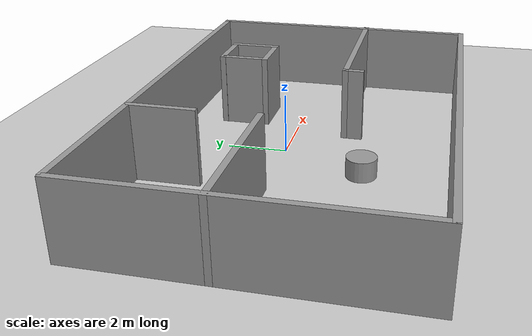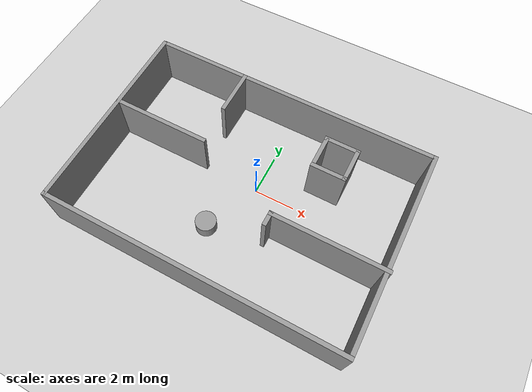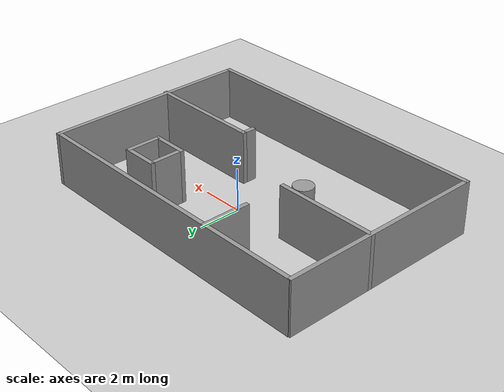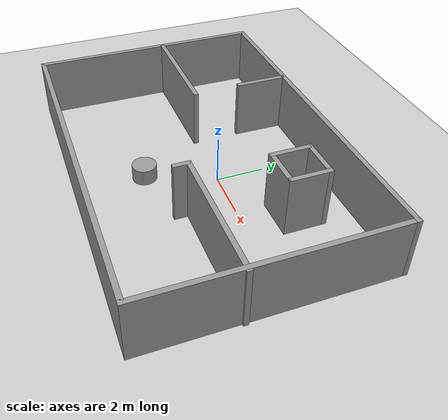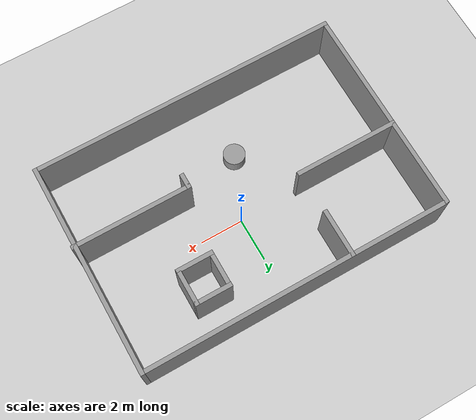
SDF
<sdf version="1.4">
 <world name="default">
  <light name="sun" type="directional">
   <pose>0 0 10 0 -0 0</pose>
   <diffuse>0.8 0.8 0.8 1</diffuse>
   <specular>0.2 0.2 0.2 1</specular>
   <attenuation>
    <range>1000</range>
    <constant>0.9</constant>
    <linear>0.01</linear>
    <quadratic>0.001</quadratic>
   </attenuation>
   <direction>-0.5 0.1 -0.9</direction>
  </light>
  <model name="ground_plane">
   <static>1</static>
   <link name="link">
    <collision name="collision">
     <geometry><plane><normal>0 0 1</normal><size>100 100</size></plane></geometry>
     <surface><friction><ode><mu>100</mu><mu2>50</mu2></ode></friction></surface>
    </collision>
    <visual name="visual">
     <cast_shadows>0</cast_shadows>
     <geometry><plane><normal>0 0 1</normal><size>100 100</size></plane></geometry>
     <material>
      <script><uri>file://media/materials/scripts/gazebo.material</uri><name>Gazebo/Grey</name></script>
     </material>
    </visual>
    <velocity_decay><linear>0</linear><angular>0</angular></velocity_decay>
   </link>
  </model>
  <physics type="ode">
   <max_step_size>0.001</max_step_size>
   <real_time_factor>1</real_time_factor>
   <real_time_update_rate>1000</real_time_update_rate>
   <gravity>0 0 -9.8</gravity>
  </physics>
  <scene><ambient>0.4 0.4 0.4 1</ambient><background>0.7 0.7 0.7 1</background><shadows>1</shadows></scene>
  <spherical_coordinates>
   <surface_model>EARTH_WGS84</surface_model>
   <latitude_deg>0</latitude_deg>
   <longitude_deg>0</longitude_deg>
   <elevation>0</elevation>
   <heading_deg>0</heading_deg>
  </spherical_coordinates>
  <model name="sim_simple">
   <link name="Wall_41">
    <collision name="Wall_41_Collision">
     <geometry><box><size>9.85587 0.2 2.5</size></box></geometry>
     <pose>0 0 1.25 0 -0 0</pose>
    </collision>
    <visual name="Wall_41_Visual">
     <pose>0 0 1.25 0 -0 0</pose>
     <geometry><box><size>9.85587 0.2 2.5</size></box></geometry>
     <material>
      <script><uri>file://media/materials/scripts/gazebo.material</uri><name>Gazebo/Grey</name></script>
     </material>
    </visual>
    <velocity_decay><linear>0</linear><angular>0</angular></velocity_decay>
    <pose>-7.43595 -0.704231 0 0 0 -1.5708</pose>
   </link>
   <link name="Wall_42">
    <collision name="Wall_42_Collision">
     <geometry><box><size>14.4577 0.2 2.5</size></box></geometry>
     <pose>0 0 1.25 0 -0 0</pose>
    </collision>
    <visual name="Wall_42_Visual">
     <pose>0 0 1.25 0 -0 0</pose>
     <geometry><box><size>14.4577 0.2 2.5</size></box></geometry>
     <material>
      <script><uri>file://media/materials/scripts/gazebo.material</uri><name>Gazebo/Grey</name></script>
     </material>
    </visual>
    <velocity_decay><linear>0</linear><angular>0</angular></velocity_decay>
    <pose>-0.3071 -5.53217 0 0 -0 0</pose>
   </link>
   <link name="Wall_43">
    <collision name="Wall_43_Collision">
     <geometry><box><size>9.88247 0.2 2.5</size></box></geometry>
     <pose>0 0 1.25 0 -0 0</pose>
    </collision>
    <visual name="Wall_43_Visual">
     <pose>0 0 1.25 0 -0 0</pose>
     <geometry><box><size>9.88247 0.2 2.5</size></box></geometry>
     <material>
      <script><uri>file://media/materials/scripts/gazebo.material</uri><name>Gazebo/Grey</name></script>
     </material>
    </visual>
    <velocity_decay><linear>0</linear><angular>0</angular></velocity_decay>
    <pose>6.82175 -0.690931 0 0 -0 1.5708</pose>
   </link>
   <link name="Wall_44">
    <collision name="Wall_44_Collision">
     <geometry><box><size>14.3779 0.2 2.5</size></box></geometry>
     <pose>0 0 1.25 0 -0 0</pose>
    </collision>
    <visual name="Wall_44_Visual">
     <pose>0 0 1.25 0 -0 0</pose>
     <geometry><box><size>14.3779 0.2 2.5</size></box></geometry>
     <material>
      <script><uri>file://media/materials/scripts/gazebo.material</uri><name>Gazebo/Grey</name></script>
     </material>
    </visual>
    <velocity_decay><linear>0</linear><angular>0</angular></velocity_decay>
    <pose>-0.2672 4.15031 0 0 -0 3.14159</pose>
   </link>
   <link name="Wall_46">
    <collision name="Wall_46_Collision">
     <geometry><box><size>2.27482 0.2 2.5</size></box></geometry>
     <pose>0 0 1.25 0 -0 0</pose>
    </collision>
    <visual name="Wall_46_Visual">
     <pose>0 0 1.25 0 -0 0</pose>
     <geometry><box><size>2.27482 0.2 2.5</size></box></geometry>
     <material>
      <script><uri>file://media/materials/scripts/gazebo.material</uri><name>Gazebo/Grey</name></script>
     </material>
    </visual>
    <velocity_decay><linear>0</linear><angular>0</angular></velocity_decay>
    <pose>-2.83412 3.1129 0 0 0 -1.5708</pose>
   </link>
   <link name="Wall_48">
    <collision name="Wall_48_Collision">
     <geometry><box><size>4.85503 0.2 2.5</size></box></geometry>
     <pose>0 0 1.25 0 -0 0</pose>
    </collision>
    <visual name="Wall_48_Visual">
     <pose>0 0 1.25 0 -0 0</pose>
     <geometry><box><size>4.85503 0.2 2.5</size></box></geometry>
     <material>
      <script><uri>file://media/materials/scripts/gazebo.material</uri><name>Gazebo/Grey</name></script>
     </material>
    </visual>
    <velocity_decay><linear>0</linear><angular>0</angular></velocity_decay>
    <pose>-5.10844 0.053874 0 0 -0 0</pose>
   </link>
   <link name="Wall_50">
    <collision name="Wall_50_Collision">
     <geometry><box><size>1.66301 0.2 2.5</size></box></geometry>
     <pose>0 0 1.25 0 -0 0</pose>
    </collision>
    <visual name="Wall_50_Visual">
     <pose>0 0 1.25 0 -0 0</pose>
     <geometry><box><size>1.66301 0.2 2.5</size></box></geometry>
     <material>
      <script><uri>file://media/materials/scripts/gazebo.material</uri><name>Gazebo/Grey</name></script>
     </material>
    </visual>
    <velocity_decay><linear>0</linear><angular>0</angular></velocity_decay>
    <pose>2.14012 1.98239 0 0 0 -1.5708</pose>
   </link>
   <link name="Wall_51">
    <collision name="Wall_51_Collision">
     <geometry><box><size>1.71621 0.2 2.5</size></box></geometry>
     <pose>0 0 1.25 0 -0 0</pose>
    </collision>
    <visual name="Wall_51_Visual">
     <pose>0 0 1.25 0 -0 0</pose>
     <geometry><box><size>1.71621 0.2 2.5</size></box></geometry>
     <material>
      <script><uri>file://media/materials/scripts/gazebo.material</uri><name>Gazebo/Grey</name></script>
     </material>
    </visual>
    <velocity_decay><linear>0</linear><angular>0</angular></velocity_decay>
    <pose>2.89822 1.25088 0 0 -0 0</pose>
   </link>
   <link name="Wall_52">
    <collision name="Wall_52_Collision">
     <geometry><box><size>1.74281 0.2 2.5</size></box></geometry>
     <pose>0 0 1.25 0 -0 0</pose>
    </collision>
    <visual name="Wall_52_Visual">
     <pose>0 0 1.25 0 -0 0</pose>
     <geometry><box><size>1.74281 0.2 2.5</size></box></geometry>
     <material>
      <script><uri>file://media/materials/scripts/gazebo.material</uri><name>Gazebo/Grey</name></script>
     </material>
    </visual>
    <velocity_decay><linear>0</linear><angular>0</angular></velocity_decay>
    <pose>3.65633 2.02229 0 0 -0 1.5708</pose>
   </link>
   <link name="Wall_53">
    <collision name="Wall_53_Collision">
     <geometry><box><size>1.72352 0.2 2.5</size></box></geometry>
     <pose>0 0 1.25 0 -0 0</pose>
    </collision>
    <visual name="Wall_53_Visual">
     <pose>0 0 1.25 0 -0 0</pose>
     <geometry><box><size>1.72352 0.2 2.5</size></box></geometry>
     <material>
      <script><uri>file://media/materials/scripts/gazebo.material</uri><name>Gazebo/Grey</name></script>
     </material>
    </visual>
    <velocity_decay><linear>0</linear><angular>0</angular></velocity_decay>
    <pose>2.89457 2.7937 0 0 -0 3.14159</pose>
   </link>
   <link name="Wall_55">
    <collision name="Wall_55_Collision">
     <geometry><box><size>5.54014 0.2 2.5</size></box></geometry>
     <pose>0 0 1.25 0 -0 0</pose>
    </collision>
    <visual name="Wall_55_Visual">
     <pose>0 0 1.25 0 -0 0</pose>
     <geometry><box><size>5.54014 0.2 2.5</size></box></geometry>
     <material>
      <script><uri>file://media/materials/scripts/gazebo.material</uri><name>Gazebo/Grey</name></script>
     </material>
    </visual>
    <velocity_decay><linear>0</linear><angular>0</angular></velocity_decay>
    <pose>4.22955 -1.73985 0 0 -0 3.14159</pose>
   </link>
   <link name="Wall_56">
    <collision name="Wall_56_Collision">
     <geometry><box><size>0.725923 0.2 2.5</size></box></geometry>
     <pose>0 0 1.25 0 -0 0</pose>
    </collision>
    <visual name="Wall_56_Visual">
     <pose>0 0 1.25 0 -0 0</pose>
     <geometry><box><size>0.725923 0.2 2.5</size></box></geometry>
     <material>
      <script><uri>file://media/materials/scripts/gazebo.material</uri><name>Gazebo/Grey</name></script>
     </material>
    </visual>
    <velocity_decay><linear>0</linear><angular>0</angular></velocity_decay>
    <pose>1.55948 -2.00281 0 0 0 -1.5708</pose>
   </link>
   <static>1</static>
  </model>
  <model name="unit_cylinder_1">
   <pose>-1.17606 -2.71796 0.153693 -1e-06 -1.29247e-26 -8.4e-05</pose>
   <link name="link">
    <inertial>
     <mass>1</mass>
     <inertia><ixx>1</ixx><ixy>0</ixy><ixz>0</ixz><iyy>1</iyy><iyz>0</iyz><izz>1</izz></inertia>
    </inertial>
    <collision name="collision">
     <geometry><cylinder><radius>0.0781662</radius><length>0.307388</length></cylinder></geometry>
    </collision>
    <visual name="visual">
     <geometry><cylinder><radius>0.5</radius><length>1</length></cylinder></geometry>
     <material>
      <script><uri>file://media/materials/scripts/gazebo.material</uri><name>Gazebo/Grey</name></script>
     </material>
    </visual>
    <velocity_decay><linear>0</linear><angular>0</angular></velocity_decay>
   </link>
   <static>0</static>
  </model>
 </world>
</sdf>
